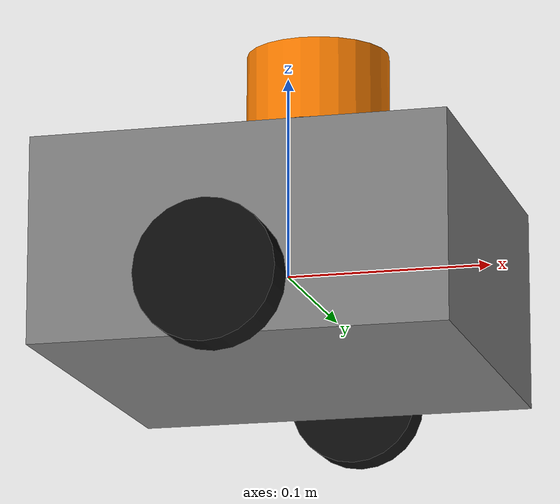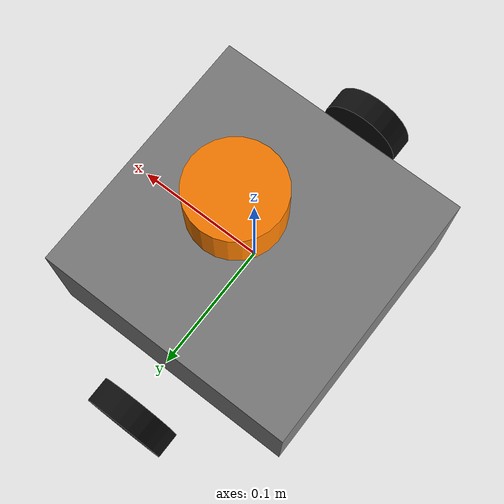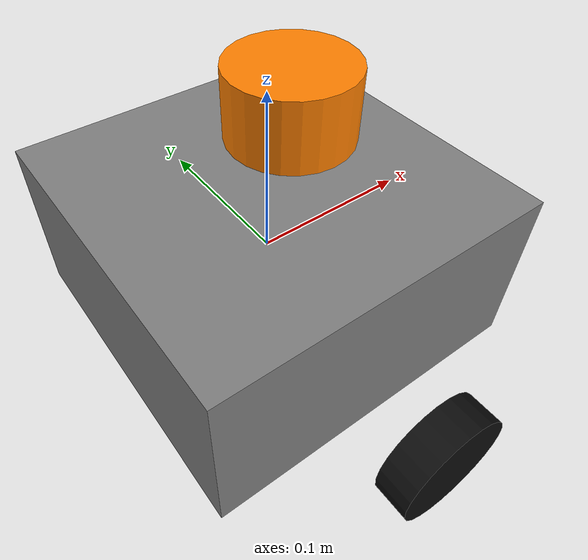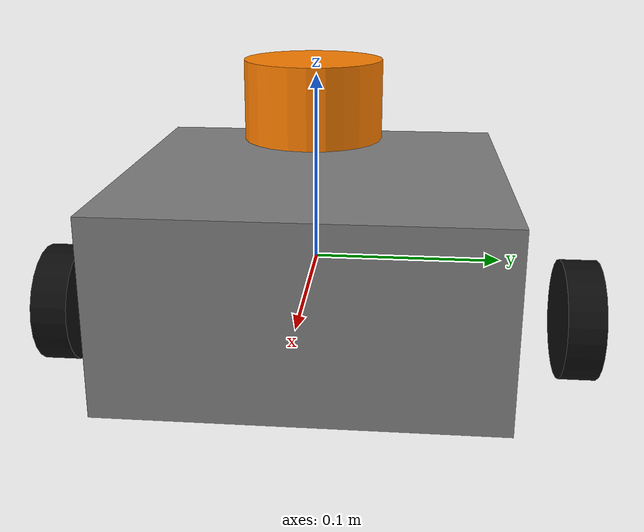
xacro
<?xml version="1.0"?>
<robot name="diffbot" xmlns:xacro="http://www.ros.org/wiki/xacro">

  <!-- ============================================================
       Configurable frame names (override with xacro args at launch)
       ============================================================ -->
  <xacro:arg name="base_frame" default="base_link"/>
  <xacro:arg name="tracking_frame" default="imu_tracking"/>
  <xacro:arg name="imu_frame" default="gyro_link"/>
  <xacro:arg name="laser_frame" default="laser"/>
  <xacro:arg name="laser_yaw" default="3.141592653589793"/>
  <xacro:property name="base_frame" value="$(arg base_frame)"/>
  <xacro:property name="tracking_frame" value="$(arg tracking_frame)"/>
  <xacro:property name="imu_frame" value="$(arg imu_frame)"/>
  <xacro:property name="laser_frame" value="$(arg laser_frame)"/>
  <xacro:property name="laser_yaw" value="$(arg laser_yaw)"/>

  <!-- ============================================================
       Configurable physical dimensions
       ============================================================ -->
  <xacro:property name="chassis_length" value="0.20"/>
  <xacro:property name="chassis_width" value="0.20"/>
  <xacro:property name="chassis_height" value="0.10"/>
  <xacro:property name="chassis_mass" value="5.0"/>

  <xacro:property name="wheel_radius" value="0.033"/>
  <xacro:property name="wheel_width" value="0.02"/>
  <xacro:property name="wheel_separation" value="0.288"/>
  <xacro:property name="wheel_mass" value="0.5"/>

  <xacro:property name="caster_radius" value="0.015"/>

  <xacro:property name="lidar_radius" value="0.035"/>
  <xacro:property name="lidar_height" value="0.04"/>
  <!-- User revised 2026-11-06: LiDAR centre approximately 15 mm FORWARD
       of chassis centre. IMU horizontal origin remains at base centre;
       existing height offsets retained, not newly measured. -->
  <xacro:property name="imu_mount_z" value="0.050"/>
  <xacro:property name="lidar_from_imu_x" value="0.015"/>
  <!-- gyro_link has down-positive Z because the H30 is installed FRD. -->
  <xacro:property name="lidar_from_imu_z" value="-0.040"/>

  <material name="grey">
    <color rgba="0.5 0.5 0.5 1.0"/>
  </material>
  <material name="black">
    <color rgba="0.05 0.05 0.05 1.0"/>
  </material>
  <material name="orange">
    <color rgba="1.0 0.5 0.0 1.0"/>
  </material>

  <link name="${base_frame}">
    <visual>
      <origin xyz="0 0 0" rpy="0 0 0"/>
      <geometry>
        <box size="${chassis_length} ${chassis_width} ${chassis_height}"/>
      </geometry>
      <material name="grey"/>
    </visual>
    <collision>
      <origin xyz="0 0 0" rpy="0 0 0"/>
      <geometry>
        <box size="${chassis_length} ${chassis_width} ${chassis_height}"/>
      </geometry>
    </collision>
    <inertial>
      <mass value="${chassis_mass}"/>
      <origin xyz="0 0 0" rpy="0 0 0"/>
      <inertia ixx="0.05" ixy="0.0" ixz="0.0" iyy="0.08" iyz="0.0" izz="0.10"/>
    </inertial>
  </link>

  <xacro:macro name="wheel" params="prefix reflect">
    <link name="${prefix}_wheel_link">
      <visual>
        <origin xyz="0 0 0" rpy="${pi/2} 0 0"/>
        <geometry>
          <cylinder radius="${wheel_radius}" length="${wheel_width}"/>
        </geometry>
        <material name="black"/>
      </visual>
      <collision>
        <origin xyz="0 0 0" rpy="${pi/2} 0 0"/>
        <geometry>
          <cylinder radius="${wheel_radius}" length="${wheel_width}"/>
        </geometry>
      </collision>
      <inertial>
        <mass value="${wheel_mass}"/>
        <origin xyz="0 0 0" rpy="0 0 0"/>
        <inertia ixx="0.001" ixy="0.0" ixz="0.0" iyy="0.001" iyz="0.0" izz="0.001"/>
      </inertial>
    </link>
    <joint name="${prefix}_wheel_joint" type="fixed">
      <parent link="${base_frame}"/>
      <child link="${prefix}_wheel_link"/>
      <origin xyz="0 ${reflect * wheel_separation/2} ${-wheel_radius}" rpy="0 0 0"/>
    </joint>
  </xacro:macro>

  <xacro:wheel prefix="left" reflect="1"/>
  <xacro:wheel prefix="right" reflect="-1"/>

  <!-- Caster (visual only) -->
  <link name="caster_wheel_link">
    <visual>
      <geometry>
        <sphere radius="${caster_radius}"/>
      </geometry>
      <material name="black"/>
    </visual>
    <collision>
      <geometry>
        <sphere radius="${caster_radius}"/>
      </geometry>
    </collision>
    <inertial>
      <mass value="0.1"/>
      <origin xyz="0 0 0" rpy="0 0 0"/>
      <inertia ixx="0.0001" ixy="0.0" ixz="0.0" iyy="0.0001" iyz="0.0" izz="0.0001"/>
    </inertial>
  </link>
  <joint name="caster_wheel_joint" type="fixed">
    <parent link="${base_frame}"/>
    <child link="caster_wheel_link"/>
    <origin xyz="${-chassis_length/2 + caster_radius} 0 ${-wheel_radius + caster_radius}" rpy="0 0 0"/>
  </joint>

  <!-- Cartographer requires its tracking-frame origin to be colocated with
       the IMU. Keep that frame FLU, then express the installed H30 FRD axes
       as a zero-translation roll-pi child. -->
  <link name="${tracking_frame}"/>
  <joint name="imu_mount_joint" type="fixed">
    <parent link="${base_frame}"/>
    <child link="${tracking_frame}"/>
    <origin xyz="0 0 ${imu_mount_z}" rpy="0 0 0"/>
  </joint>

  <link name="${imu_frame}"/>
  <joint name="imu_axes_joint" type="fixed">
    <parent link="${tracking_frame}"/>
    <child link="${imu_frame}"/>
    <origin xyz="0 0 0" rpy="${pi} 0 0"/>
  </joint>

  <!-- ============================================================
       2D LiDAR: gyro_link -> laser (fixed, robot_state_publisher)
       ============================================================ -->
  <link name="${laser_frame}">
    <visual>
      <origin xyz="0 0 0" rpy="0 0 0"/>
      <geometry>
        <cylinder radius="${lidar_radius}" length="${lidar_height}"/>
      </geometry>
      <material name="orange"/>
    </visual>
    <collision>
      <origin xyz="0 0 0" rpy="0 0 0"/>
      <geometry>
        <cylinder radius="${lidar_radius}" length="${lidar_height}"/>
      </geometry>
    </collision>
    <inertial>
      <mass value="0.1"/>
      <origin xyz="0 0 0" rpy="0 0 0"/>
      <inertia ixx="0.0001" ixy="0.0" ixz="0.0" iyy="0.0001" iyz="0.0" izz="0.0001"/>
    </inertial>
  </link>

  <joint name="laser_joint" type="fixed">
    <parent link="${imu_frame}"/>
    <child link="${laser_frame}"/>
    <!-- In the FRD parent, physically upward is -Z. rpy=(pi,0,-yaw)
         composes with base->gyro roll pi, restoring an FLU laser frame. -->
    <origin xyz="${lidar_from_imu_x} 0 ${lidar_from_imu_z}"
            rpy="${pi} 0 ${-laser_yaw}"/>
  </joint>

</robot>
